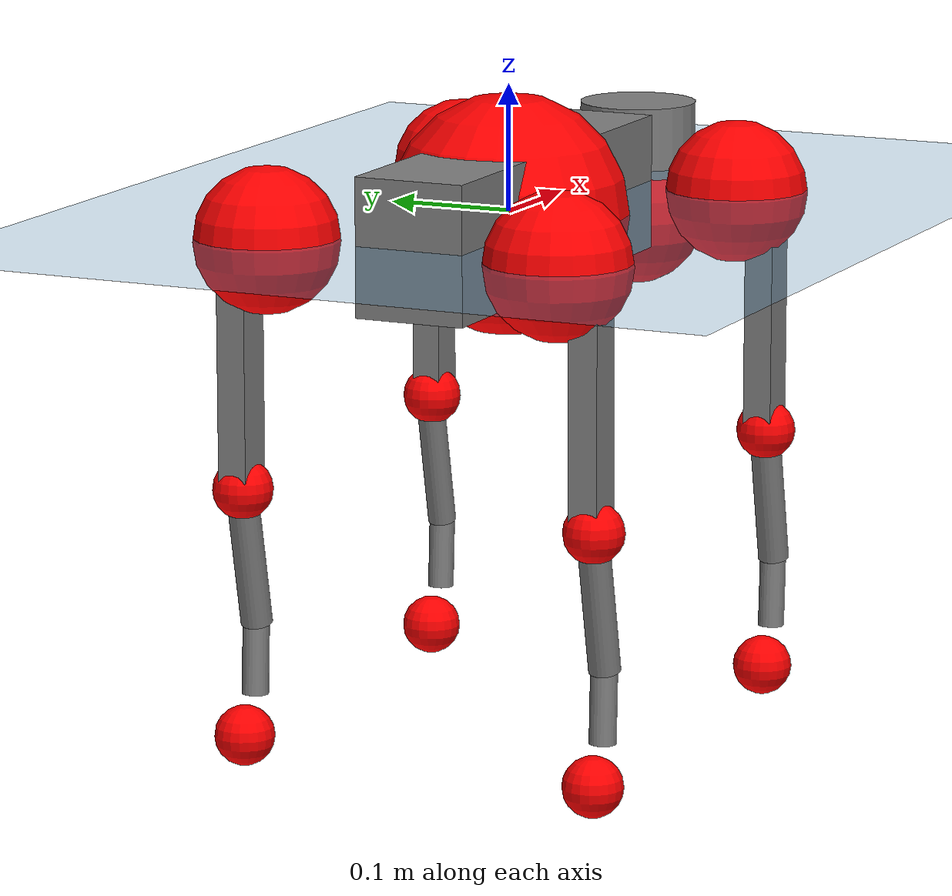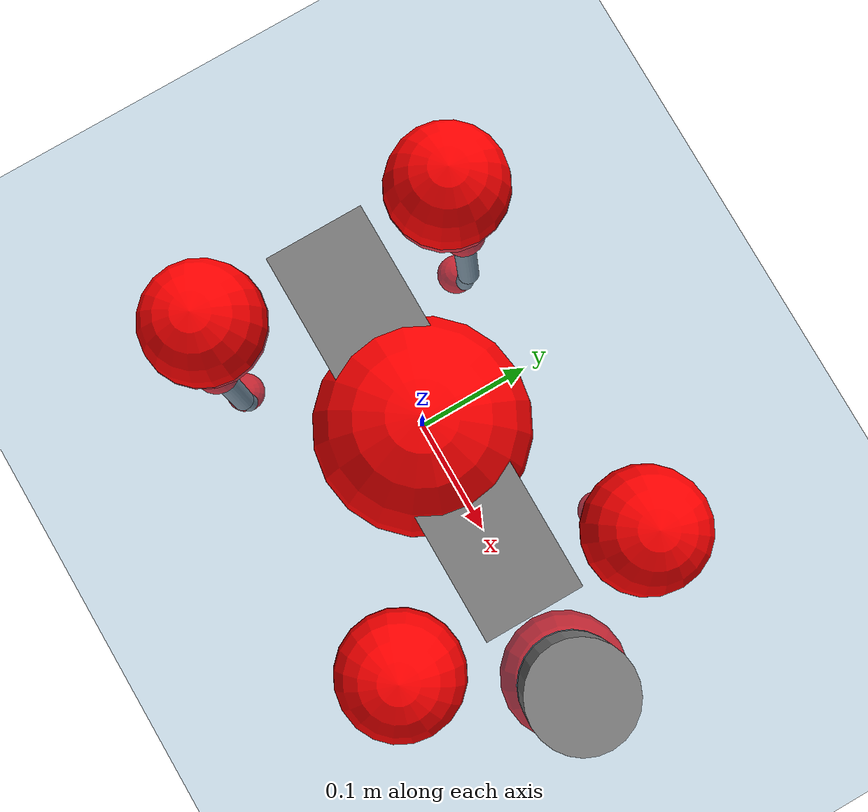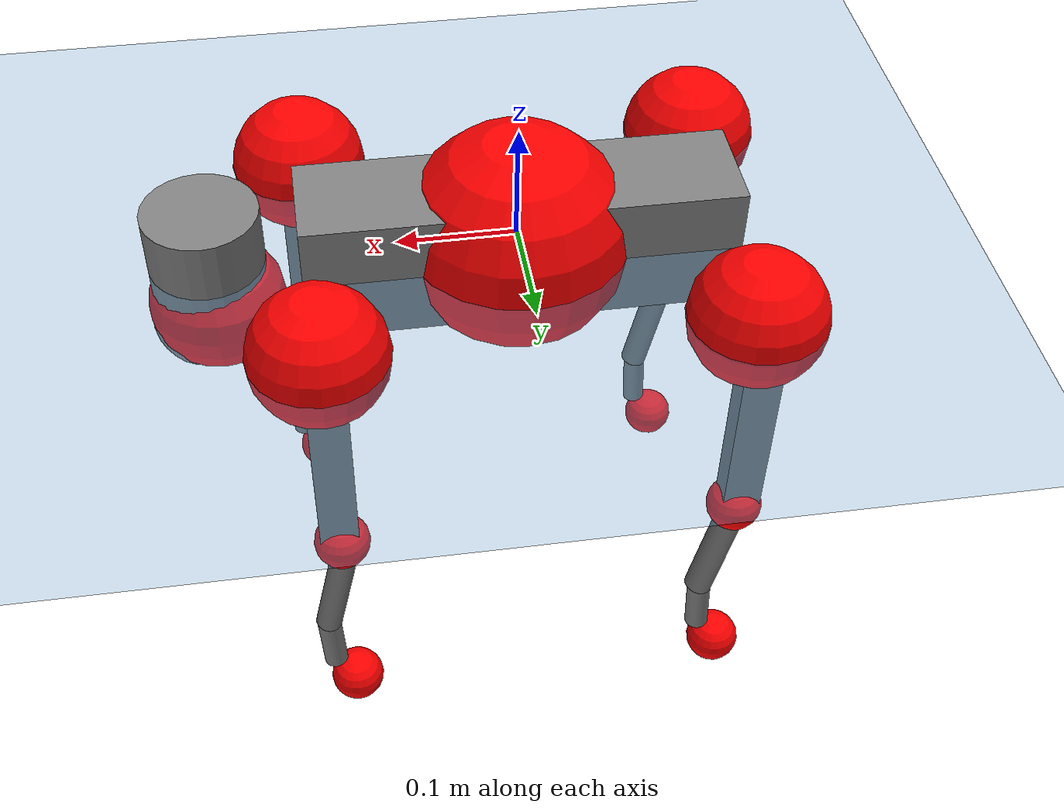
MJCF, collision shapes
<mujoco model="go2">
  <compiler angle="radian" assetdir="assets" balanceinertia="true" inertiafromgeom="false"/>

  <option timestep="0.005" density="1.2" viscosity="2e-05"/>

  <size nkey="1"/>

  <visual>
    <quality shadowsize="8192"/>
    <map shadowclip="0.5"/>
  </visual>

  <default>
    <default class="/">
      <geom contype="0" conaffinity="0" group="1" solref="-1000 -80"/>
      <site size="0.01 0.005 0.005" group="5"/>
      <general forcelimited="true" biastype="affine" gainprm="20" biasprm="0 -20 -0.5"/>
      <default class="go2">
        <joint armature="0.01" damping="0.01" frictionloss="0.2"/>
        <geom condim="1" margin="0.001"/>
        <default class="visual">
          <geom type="mesh" group="2"/>
        </default>
        <default class="collision">
          <geom group="3"/>
          <default class="foot">
            <geom size="0.022 0 0" condim="6" priority="1" friction="0.8 0.02 0.01" solimp="0.015 1 0.022"/>
          </default>
        </default>
        <default class="reward_collision_sphere">
          <geom group="5" rgba="1 0 0 1"/>
        </default>
      </default>
    </default>
  </default>

  <asset>
    <texture type="skybox" colorspace="auto" name="//unnamed_texture_0" builtin="gradient" rgb1="0.95 0.95 0.95" rgb2="0.95 0.95 0.95" width="100" height="600"/>
    <texture type="2d" colorspace="auto" name="texplane" builtin="checker" rgb1="0.345 0.575 0.748" rgb2="0.345 0.575 0.748" markrgb="1 1 1" width="512" height="512"/>
    <material name="MatPlane" class="/" texture="texplane" texuniform="true" texrepeat="2 2" specular="0.9"/>
    <material name="metal" class="/" rgba="0.9 0.95 0.95 1"/>
    <material name="black" class="/" rgba="0 0 0 1"/>
    <material name="white" class="/"/>
    <material name="gray" class="/" rgba="0.671705 0.692426 0.77427 1"/>
    <mesh name="base_0" class="/" file="base_0.obj"/>
    <mesh name="base_1" class="/" file="base_1.obj"/>
    <mesh name="base_2" class="/" file="base_2.obj"/>
    <mesh name="base_3" class="/" file="base_3.obj"/>
    <mesh name="base_4" class="/" file="base_4.obj"/>
    <mesh name="hip_0" class="/" file="hip_0.obj"/>
    <mesh name="hip_1" class="/" file="hip_1.obj"/>
    <mesh name="thigh_0" class="/" file="thigh_0.obj"/>
    <mesh name="thigh_1" class="/" file="thigh_1.obj"/>
    <mesh name="thigh_mirror_0" class="/" file="thigh_mirror_0.obj"/>
    <mesh name="thigh_mirror_1" class="/" file="thigh_mirror_1.obj"/>
    <mesh name="calf_0" class="/" file="calf_0.obj"/>
    <mesh name="calf_1" class="/" file="calf_1.obj"/>
    <mesh name="calf_mirror_0" class="/" file="calf_mirror_0.obj"/>
    <mesh name="calf_mirror_1" class="/" file="calf_mirror_1.obj"/>
    <mesh name="foot" class="/" file="foot.obj"/>
  </asset>

  <worldbody>
    <geom name="floor" class="/" size="100 100 0.125" type="plane" group="0" material="MatPlane"/>
    <light name="toplight_shadow" class="/" pos="0 0 5" dir="0.0990148 0.0990148 -0.990148" type="directional" ambient="0.04 0.04 0.04" diffuse="0.55 0.55 0.55" specular="0.12 0.12 0.12"/>
    <light name="toplight_fill" class="/" pos="0 0 5" dir="0.0990148 0.0990148 -0.990148" type="directional" castshadow="false" ambient="0.04 0.04 0.04" diffuse="0.3 0.3 0.3" specular="0.08 0.08 0.08"/>
    <body name="trunk" childclass="go2" pos="-0.000141753 -2.45456e-05 -0.00182503" quat="1 4.27465e-05 -0.000208949 -0.000151316">
      <inertial pos="0.01886 0.00255015 -0.00275818" quat="-0.000874312 0.713422 -0.00189744 0.700732" mass="5.77723" diaginertia="0.0604809 0.115047 0.0159875"/>
      <joint name="//unnamed_joint_0" type="free" armature="0" damping="0" frictionloss="0"/>
      <geom name="//unnamed_geom_1" class="visual" material="black" mesh="base_0"/>
      <geom name="//unnamed_geom_2" class="visual" material="black" mesh="base_1"/>
      <geom name="//unnamed_geom_3" class="visual" material="black" mesh="base_2"/>
      <geom name="//unnamed_geom_4" class="visual" material="white" mesh="base_3"/>
      <geom name="//unnamed_geom_5" class="visual" material="gray" mesh="base_4"/>
      <geom name="trunk_1" class="collision" size="0.178127 0.0442714 0.0539779" type="box"/>
      <geom name="trunk_2" class="collision" size="0.047349 0.0426141" pos="0.252888 0 0.00920686" type="cylinder"/>
      <geom name="trunk_3" class="collision" size="0.0445081" pos="0.259986 0 -0.0552411"/>
      <geom name="//unnamed_geom_9" class="reward_collision_sphere" size="0.0946981"/>
      <geom name="//unnamed_geom_10" class="reward_collision_sphere" size="0.0568189" pos="0.248451 0 -0.0414309"/>
      <site name="imu" pos="-0.0262128 -0.00371887 0.0363287" size="0.00946981"/>
      <camera name="track" pos="0 -2.06586 0" quat="0.707107 0.707107 0 0" mode="trackcom"/>
      <camera name="ego_camera" pos="0.276846 0 0.0414309" quat="-0.5 -0.5 0.5 0.5"/>
      <body name="FL_hip" pos="0.170908 0.0473308 0.000213921" quat="1 2.50178e-05 0.000102081 -0.000258173">
        <inertial pos="-0.00719175 0.00164334 -0.000795161" quat="0.496519 0.497091 0.506112 0.500221" mass="0.590401" diaginertia="0.00049262 0.000703891 0.000324973"/>
        <joint name="FL_hip_joint" pos="0 0 0" axis="0.999985 0.0048065 -0.00259163" stiffness="0.00180951" range="-1.04463 1.05205" armature="0.0100351" damping="0.00890833" frictionloss="0.166513"/>
        <geom name="//unnamed_geom_11" class="visual" material="metal" mesh="hip_0"/>
        <geom name="//unnamed_geom_12" class="visual" material="gray" mesh="hip_1"/>
        <geom name="//unnamed_geom_13" class="collision" size="0.0435611 0.0189396" pos="0 0.0826345 0" quat="0.707107 0.707107 0 0" type="cylinder"/>
        <geom name="//unnamed_geom_14" class="reward_collision_sphere" size="0.0568189" pos="0 0.0723052 0"/>
        <body name="FL_thigh" pos="-0.00196623 0.0987522 0.00239539" quat="1 -5.23197e-05 -0.00012956 5.93737e-05">
          <inertial pos="-0.00430751 -0.0226959 -0.0305899" quat="0.830234 0.0867284 -0.0187758 0.550307" mass="0.93371" diaginertia="0.00327256 0.00682764 0.00054344"/>
          <joint name="FL_thigh_joint" pos="0 0 0" axis="-0.00947674 0.999954 -0.00152888" stiffness="0.00298137" range="-1.59701 3.49303" armature="0.00909109" damping="0.010469" frictionloss="0.189368"/>
          <geom name="//unnamed_geom_15" class="visual" material="metal" mesh="thigh_0"/>
          <geom name="//unnamed_geom_16" class="visual" material="gray" mesh="thigh_1"/>
          <geom name="//unnamed_geom_17" class="collision" size="0.100853 0.0116005 0.0160987" pos="0 0 -0.098053" quat="0.707107 0 0.707107 0" type="box"/>
          <body name="FL_calf" pos="-0.00194671 0.000881131 -0.194168" quat="0.999999 0.00114065 0.00059009 -0.000569373">
            <inertial pos="0.00519136 -0.000577436 -0.129468" quat="0.711096 0.00189169 -0.00484519 0.703076" mass="0.201277" diaginertia="0.000820172 0.0016807 3.44223e-05"/>
            <joint name="FL_calf_joint" pos="0 0 0" axis="-0.00952942 0.999954 0.000536169" range="-2.72794 -0.822141" armature="0.00954401" damping="0.0132303" frictionloss="0.172107"/>
            <geom name="//unnamed_geom_18" class="visual" material="gray" mesh="calf_0"/>
            <geom name="//unnamed_geom_19" class="visual" material="black" mesh="calf_1"/>
            <geom name="FL_calf0" class="collision" size="0.0113638 0.0568189" pos="0.00709861 0 -0.0552411" quat="0.994493 0 -0.104807 0" type="cylinder"/>
            <geom name="//unnamed_geom_21" class="collision" size="0.0104168 0.0307769" pos="0.0177465 0 -0.136261" quat="0.999688 0 0.0249974 0" type="cylinder"/>
            <geom name="//unnamed_geom_22" class="visual" pos="0 0 -0.196106" quat="1 0 0 0" material="black" mesh="foot"/>
            <geom name="FL_foot" class="foot" size="0.0188753" pos="-0.00177465 0 -0.196106"/>
            <geom name="//unnamed_geom_24" class="reward_collision_sphere" size="0.0236745"/>
            <geom name="//unnamed_geom_25" class="reward_collision_sphere" size="0.0236745" pos="-0.00177465 0 -0.196106"/>
            <site name="FL_foot" class="foot" pos="-0.00177465 0 -0.196106" size="0.00946981"/>
          </body>
        </body>
      </body>
      <body name="FR_hip" pos="0.172023 -0.048528 -0.00089171" quat="0.999999 0.000873656 -0.000715752 -0.000319394">
        <inertial pos="-0.00486266 -0.00177283 0.000633727" quat="0.497507 0.505336 0.50052 0.496591" mass="0.550433" diaginertia="0.000468246 0.00067484 0.000317238"/>
        <joint name="FR_hip_joint" pos="0 0 0" axis="0.999992 0.00386778 -0.000459968" stiffness="0.00431965" range="-1.00608 0.995689" armature="0.00937698" damping="0.0124134" frictionloss="0.176613"/>
        <geom name="//unnamed_geom_26" class="visual" pos="0 9.77837e-10 4.19414e-08" quat="4.63268e-05 1 0 0" material="metal" mesh="hip_0"/>
        <geom name="//unnamed_geom_27" class="visual" pos="0 1.58519e-09 -1.03737e-07" quat="4.63268e-05 1 0 0" material="gray" mesh="hip_1"/>
        <geom name="//unnamed_geom_28" class="collision" size="0.0435611 0.0189396" pos="0 -0.0826345 0" quat="0.707107 0.707107 0 0" type="cylinder"/>
        <geom name="//unnamed_geom_29" class="reward_collision_sphere" size="0.0568189" pos="0 -0.0723052 0"/>
        <body name="FR_thigh" pos="0.00307485 -0.0970242 0.000656273" quat="1 -0.000147462 -0.000125917 -0.000287172">
          <inertial pos="-0.00269526 0.0237596 -0.0300021" quat="0.551577 -0.0188881 0.0835636 0.829712" mass="1.00626" diaginertia="0.00326801 0.0071072 0.00059339"/>
          <joint name="FR_thigh_joint" pos="0 0 0" axis="-0.00845155 -0.999958 -0.00355093" stiffness="0.00124719" range="-3.43836 1.51518" armature="0.00963083" damping="0" frictionloss="0.199589"/>
          <geom name="//unnamed_geom_30" class="visual" material="metal" mesh="thigh_mirror_0"/>
          <geom name="//unnamed_geom_31" class="visual" material="gray" mesh="thigh_mirror_1"/>
          <geom name="//unnamed_geom_32" class="collision" size="0.100853 0.0116005 0.0160987" pos="0 0 -0.098053" quat="0.707107 0 0.707107 0" type="box"/>
          <body name="FR_calf" pos="0.00257659 -0.000681647 -0.194865" quat="1 -0.000163259 1.88957e-05 -0.000479024">
            <inertial pos="0.00603915 0.00186146 -0.127819" quat="0.701521 -0.00810265 0.00331808 0.712595" mass="0.197536" diaginertia="0.000826819 0.00170402 3.48193e-05"/>
            <joint name="FR_calf_joint" pos="0 0 0" axis="-0.00271585 -0.99996 0.00853466" range="0.818983 2.67267" armature="0.00953355" damping="0.017185" frictionloss="0.164606"/>
            <geom name="//unnamed_geom_33" class="visual" material="gray" mesh="calf_mirror_0"/>
            <geom name="//unnamed_geom_34" class="visual" material="black" mesh="calf_mirror_1"/>
            <geom name="FR_calf0" class="collision" size="0.0123108 0.0568189" pos="0.00887326 0 -0.0552411" quat="0.995004 0 -0.0998334 0" type="cylinder"/>
            <geom name="//unnamed_geom_36" class="collision" size="0.0104168 0.0307769" pos="0.0177465 0 -0.136261" quat="0.999688 0 0.0249974 0" type="cylinder"/>
            <geom name="//unnamed_geom_37" class="visual" pos="0 0 -0.196106" quat="1 0 0 0" material="black" mesh="foot"/>
            <geom name="FR_foot" class="foot" size="0.0226295" pos="-0.00177465 0 -0.196106"/>
            <geom name="//unnamed_geom_39" class="reward_collision_sphere" size="0.0236745"/>
            <geom name="//unnamed_geom_40" class="reward_collision_sphere" size="0.0236745" pos="-0.00177465 0 -0.196106"/>
            <site name="FR_foot" class="foot" pos="-0.00177465 0 -0.196106" size="0.00946981"/>
          </body>
        </body>
      </body>
      <body name="RL_hip" pos="-0.170248 0.050524 -0.00126031" quat="1 -0.000448675 0.000706449 -2.63114e-05">
        <inertial pos="0.0043796 -9.43048e-05 -0.00101539" quat="0.502932 0.508849 0.490893 0.497148" mass="0.556487" diaginertia="0.000481203 0.000712857 0.000317266"/>
        <joint name="RL_hip_joint" pos="0 0 0" axis="-0.999733 0.0181299 0.0143363" range="-1.06849 1.03787" armature="0.00955222" damping="0.00421444" frictionloss="0.19413"/>
        <geom name="//unnamed_geom_41" class="visual" pos="2.90618e-10 0 5.69679e-08" quat="4.63268e-05 0 1 0" material="metal" mesh="hip_0"/>
        <geom name="//unnamed_geom_42" class="visual" pos="4.71127e-10 0 5.05224e-08" quat="4.63268e-05 0 1 0" material="gray" mesh="hip_1"/>
        <geom name="//unnamed_geom_43" class="collision" size="0.0435611 0.0189396" pos="0 0.0826345 0" quat="0.707107 0.707107 0 0" type="cylinder"/>
        <geom name="//unnamed_geom_44" class="reward_collision_sphere" size="0.0568189" pos="0 0.0723052 0"/>
        <body name="RL_thigh" pos="-0.000438306 0.0960377 -0.000562354" quat="1 0.000273569 0.000176549 0.000184908">
          <inertial pos="-0.00258219 -0.024548 -0.0301331" quat="0.830327 0.0851282 -0.0185095 0.550424" mass="0.981778" diaginertia="0.00342014 0.00702992 0.000603221"/>
          <joint name="RL_thigh_joint" pos="0 0 0" axis="0.0102286 0.999922 -0.00713998" stiffness="0.0060851" range="-0.524558 4.53848" armature="0.00930475" damping="0.00657687" frictionloss="0.191346"/>
          <geom name="//unnamed_geom_45" class="visual" material="metal" mesh="thigh_0"/>
          <geom name="//unnamed_geom_46" class="visual" material="gray" mesh="thigh_1"/>
          <geom name="//unnamed_geom_47" class="collision" size="0.100853 0.0116005 0.0160987" pos="0 0 -0.098053" quat="0.707107 0 0.707107 0" type="box"/>
          <body name="RL_calf" pos="0.0024771 0.000317602 -0.196403" quat="0.999999 -0.000377604 0.000300072 -0.00117924">
            <inertial pos="0.00775305 0.000334352 -0.131828" quat="0.710569 0.00171922 -0.00450236 0.703611" mass="0.204591" diaginertia="0.000854977 0.00183459 3.74234e-05"/>
            <joint name="RL_calf_joint" pos="0 0 0" axis="0.0162819 0.999852 -0.00548792" range="-2.72544 -0.886415" armature="0.0094761" damping="0.00767512" frictionloss="0.192327"/>
            <geom name="//unnamed_geom_48" class="visual" material="gray" mesh="calf_0"/>
            <geom name="//unnamed_geom_49" class="visual" material="black" mesh="calf_1"/>
            <geom name="RL_calf0" class="collision" size="0.0123108 0.0568189" pos="0.00887326 0 -0.0552411" quat="0.995004 0 -0.0998334 0" type="cylinder"/>
            <geom name="//unnamed_geom_51" class="collision" size="0.0104168 0.0307769" pos="0.0177465 0 -0.136261" quat="0.999688 0 0.0249974 0" type="cylinder"/>
            <geom name="//unnamed_geom_52" class="visual" pos="0 0 -0.196106" quat="1 0 0 0" material="black" mesh="foot"/>
            <geom name="RL_foot" class="foot" size="0.0164065" pos="-0.00177465 0 -0.196106"/>
            <geom name="//unnamed_geom_54" class="reward_collision_sphere" size="0.0236745"/>
            <geom name="//unnamed_geom_55" class="reward_collision_sphere" size="0.0236745" pos="-0.00177465 0 -0.196106"/>
            <site name="RL_foot" class="foot" pos="-0.00177465 0 -0.196106" size="0.00946981"/>
          </body>
        </body>
      </body>
      <body name="RR_hip" pos="-0.171129 -0.0470077 -0.00211296" quat="0.999999 -0.00119917 -0.000305821 -0.000123858">
        <inertial pos="0.00358193 -0.00160947 0.000166586" quat="0.498278 0.500001 0.506223 0.495435" mass="0.572493" diaginertia="0.000484825 0.000684953 0.000310877"/>
        <joint name="RR_hip_joint" pos="0 0 0" axis="-1 0.000360987 -0.000682653" range="-1.09737 1.02515" armature="0.00814604" damping="0.00736799" frictionloss="0.20129"/>
        <geom name="//unnamed_geom_56" class="visual" pos="-2.85578e-10 9.77837e-10 1.50265e-08" quat="2.14617e-09 4.63268e-05 4.63268e-05 -1" material="metal" mesh="hip_0"/>
        <geom name="//unnamed_geom_57" class="visual" pos="-4.83596e-10 1.58519e-09 1.5426e-07" quat="2.14617e-09 4.63268e-05 4.63268e-05 -1" material="gray" mesh="hip_1"/>
        <geom name="//unnamed_geom_58" class="collision" size="0.0435611 0.0189396" pos="0 -0.0826345 0" quat="0.707107 0.707107 0 0" type="cylinder"/>
        <geom name="//unnamed_geom_59" class="reward_collision_sphere" size="0.0568189" pos="0 -0.0723052 0"/>
        <body name="RR_thigh" pos="0.00027361 -0.0989874 -0.00310599" quat="1 2.17794e-05 -1.71299e-05 -5.59816e-05">
          <inertial pos="-0.00328707 0.0257279 -0.029307" quat="0.54732 -0.0297189 0.0874189 0.831815" mass="0.948057" diaginertia="0.00314733 0.00661296 0.000562239"/>
          <joint name="RR_thigh_joint" pos="0 0 0" axis="8.83922e-05 -1 -5.89121e-05" stiffness="0.00713359" range="-4.54432 0.470104" armature="0.0108426" damping="0.012096" frictionloss="0.180943"/>
          <geom name="//unnamed_geom_60" class="visual" material="metal" mesh="thigh_mirror_0"/>
          <geom name="//unnamed_geom_61" class="visual" material="gray" mesh="thigh_mirror_1"/>
          <geom name="//unnamed_geom_62" class="collision" size="0.100853 0.0116005 0.0160987" pos="0 0 -0.098053" quat="0.707107 0 0.707107 0" type="box"/>
          <body name="RR_calf" pos="-0.000980589 -0.00273997 -0.196679" quat="0.999999 -0.000715057 0.000340923 -0.000757348">
            <inertial pos="0.00567062 0.000283535 -0.130124" quat="0.712859 -0.00192598 0.00264014 0.7013" mass="0.197148" diaginertia="0.000805834 0.00173177 3.61086e-05"/>
            <joint name="RR_calf_joint" pos="0 0 0" axis="0.00394133 -0.999961 0.00794424" stiffness="0.0109523" range="0.883483 2.7775" armature="0.00924487" damping="0.0153248" frictionloss="0.183511"/>
            <geom name="//unnamed_geom_63" class="visual" material="gray" mesh="calf_mirror_0"/>
            <geom name="//unnamed_geom_64" class="visual" material="black" mesh="calf_mirror_1"/>
            <geom name="RR_calf0" class="collision" size="0.0123108 0.0568189" pos="0.00887326 0 -0.0552411" quat="0.995004 0 -0.0998334 0" type="cylinder"/>
            <geom name="//unnamed_geom_66" class="collision" size="0.0104168 0.0307769" pos="0.0177465 0 -0.136261" quat="0.999688 0 0.0249974 0" type="cylinder"/>
            <geom name="//unnamed_geom_67" class="visual" pos="0 0 -0.196106" quat="1 0 0 0" material="black" mesh="foot"/>
            <geom name="RR_foot" class="foot" size="0.0203615" pos="-0.00177465 0 -0.196106"/>
            <geom name="//unnamed_geom_69" class="reward_collision_sphere" size="0.0236745"/>
            <geom name="//unnamed_geom_70" class="reward_collision_sphere" size="0.0236745" pos="-0.00177465 0 -0.196106"/>
            <site name="RR_foot" class="foot" pos="-0.00177465 0 -0.196106" size="0.00946981"/>
          </body>
        </body>
      </body>
    </body>
  </worldbody>

  <contact>
    <pair class="/" geom1="floor" geom2="FL_foot" name="//unnamed_contact_0"/>
    <pair class="/" geom1="floor" geom2="FR_foot" name="//unnamed_contact_1"/>
    <pair class="/" geom1="floor" geom2="RL_foot" name="//unnamed_contact_2"/>
    <pair class="/" geom1="floor" geom2="RR_foot" name="//unnamed_contact_3"/>
  </contact>

  <actuator>
    <general name="FL_hip" class="/" joint="FL_hip_joint" forcerange="-21.6813 21.6813" gainprm="20.3119" biasprm="0 -20.3119 -0.470203"/>
    <general name="FL_thigh" class="/" joint="FL_thigh_joint" forcerange="-20.2836 20.2836" gainprm="20.3119" biasprm="0 -20.3119 -0.470203"/>
    <general name="FL_calf" class="/" joint="FL_calf_joint" forcerange="-41.2097 41.2097" gainprm="20.3119" biasprm="0 -20.3119 -0.470203"/>
    <general name="FR_hip" class="/" joint="FR_hip_joint" forcerange="-23.1619 23.1619" gainprm="20.3119" biasprm="0 -20.3119 -0.470203"/>
    <general name="FR_thigh" class="/" joint="FR_thigh_joint" forcerange="-21.855 21.855" gainprm="20.3119" biasprm="0 -20.3119 -0.470203"/>
    <general name="FR_calf" class="/" joint="FR_calf_joint" forcerange="-42.8211 42.8211" gainprm="20.3119" biasprm="0 -20.3119 -0.470203"/>
    <general name="RL_hip" class="/" joint="RL_hip_joint" forcerange="-23.7468 23.7468" gainprm="20.3119" biasprm="0 -20.3119 -0.470203"/>
    <general name="RL_thigh" class="/" joint="RL_thigh_joint" forcerange="-22.5026 22.5026" gainprm="20.3119" biasprm="0 -20.3119 -0.470203"/>
    <general name="RL_calf" class="/" joint="RL_calf_joint" forcerange="-42.1312 42.1312" gainprm="20.3119" biasprm="0 -20.3119 -0.470203"/>
    <general name="RR_hip" class="/" joint="RR_hip_joint" forcerange="-20.2263 20.2263" gainprm="20.3119" biasprm="0 -20.3119 -0.470203"/>
    <general name="RR_thigh" class="/" joint="RR_thigh_joint" forcerange="-23.1499 23.1499" gainprm="20.3119" biasprm="0 -20.3119 -0.470203"/>
    <general name="RR_calf" class="/" joint="RR_calf_joint" forcerange="-44.3196 44.3196" gainprm="20.3119" biasprm="0 -20.3119 -0.470203"/>
  </actuator>

  <sensor>
    <gyro site="imu" name="imu_angular_velocity"/>
    <velocimeter site="imu" name="imu_linear_velocity"/>
    <framelinvel objtype="site" objname="FL_foot" name="FL_foot_global_linear_velocity"/>
    <framelinvel objtype="site" objname="FR_foot" name="FR_foot_global_linear_velocity"/>
    <framelinvel objtype="site" objname="RL_foot" name="RL_foot_global_linear_velocity"/>
    <framelinvel objtype="site" objname="RR_foot" name="RR_foot_global_linear_velocity"/>
  </sensor>

  <keyframe>
    <key name="home" qpos="0 0 0.325 1 0 0 0 0.1 0.8 -1.5 -0.1 -0.8 1.5 -0.1 0.8 -1.5 0.1 -0.8 1.5"/>
  </keyframe>
</mujoco>
